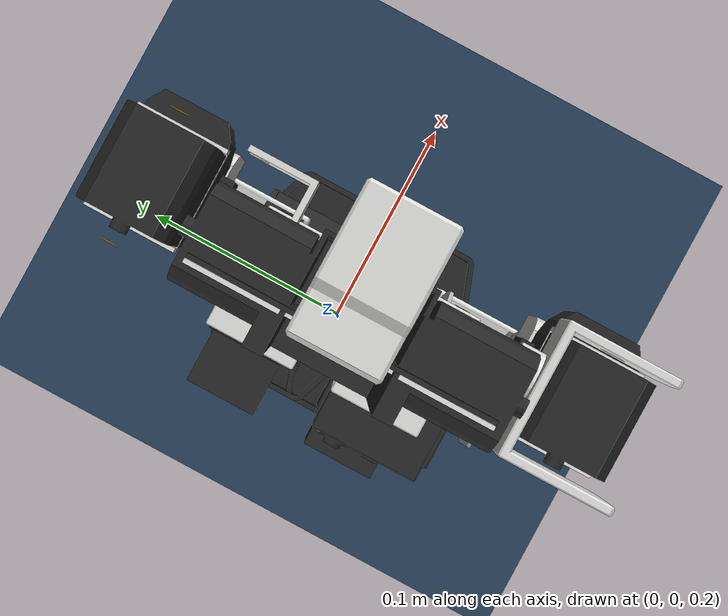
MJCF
<mujoco model="roid1_middlefoot_mjcf scene">
  <include file="roid1_middlefoot_mjcf.xml"/>

  <statistic center="0 0 0.500000" extent="0.800000"/>

  <visual>
    <headlight diffuse="0.6 0.6 0.6" ambient="0.3 0.3 0.3" specular="0 0 0"/>
    <rgba haze="0.15 0.25 0.35 1"/>
    <global azimuth="-130" elevation="-20"/>
  </visual>

  <asset>
    <texture type="skybox" builtin="gradient" rgb1="0.3 0.5 0.7" rgb2="0 0 0" width="512" height="3072"/>
    <texture type="2d" name="groundplane" builtin="checker" mark="edge" rgb1="0.2 0.3 0.4" rgb2="0.1 0.2 0.3"
      markrgb="0.8 0.8 0.8" width="300" height="300"/>
    <material name="groundplane" texture="groundplane" texuniform="true" texrepeat="5 5" reflectance="0.2"/>
  </asset>

  <worldbody>
    <!-- Ground/Environment -->
    <light pos="0 0 1.5" dir="0 0 -1" directional="true"/>
    <geom name="floor" size="0 0 0.05" type="plane" material="groundplane" group="0"/>
  </worldbody>
</mujoco>

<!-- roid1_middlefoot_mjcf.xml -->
<mujoco model="roid1_middlefoot_mjcf">
  <compiler angle="radian" meshdir="assets" autolimits="true" />

  <option cone="elliptic" impratio="100" />

  <default>
    <!-- 共通設定 -->
    <joint damping="0.1" armature="0.01" frictionloss="0.2"/>
    <motor ctrlrange="-23.7 23.7"/>
    <geom friction="0.4" margin="0.001" condim="3"/>
    <!-- コライダー用：group=0 -->
    <default class="collision">
      <geom group="0"/>
    </default>
    <!-- ビジュアル用：group=1（衝突しない） -->
    <default class="visual">
      <geom contype="0" conaffinity="0" group="1"/>
    </default>
  </default>

  <asset>
    <material name="metal" rgba=".9 .95 .95 1" />
    <material name="black" rgba="0 0 0 1" />
    <material name="white" rgba="1 1 1 1" />
    <material name="gray" rgba="0.671705 0.692426 0.774270 1" />

    <mesh name="c_chest" file="c_chest.obj" />
    <mesh name="c_chest_dec1" file="c_chest_dec1.obj" />
    <mesh name="c_chest_dec2" file="c_chest_dec2.obj" />
    <mesh name="c_head" file="c_head.obj" />
    <mesh name="c_waist" file="c_waist.obj" />
    <mesh name="l_ankle" file="l_ankle.obj" />
    <mesh name="l_arm_lower" file="l_arm_lower.obj" />
    <mesh name="l_arm_upper" file="l_arm_upper.obj" />
    <mesh name="l_arm_upper_dec1" file="l_arm_upper_dec1.obj" />
    <mesh name="l_elbow" file="l_elbow.obj" />
    <mesh name="l_foot_middle" file="l_foot_middle.obj" />
    <mesh name="l_hipjoint_lower" file="l_hipjoint_lower.obj" />
    <mesh name="l_hipjoint_upper" file="l_hipjoint_upper.obj" />
    <mesh name="l_hipjoint_upper_dec1" file="l_hipjoint_upper_dec1.obj" />
    <mesh name="l_leg_lower" file="l_leg_lower.obj" />
    <mesh name="l_leg_lower_dec1" file="l_leg_lower_dec1.obj" />
    <mesh name="l_leg_upper" file="l_leg_upper.obj" />
    <mesh name="l_leg_upper_dec1" file="l_leg_upper_dec1.obj" />
    <mesh name="l_shoulder" file="l_shoulder.obj" />
    <mesh name="l_shoulder_dec1" file="l_shoulder_dec1.obj" />
    <mesh name="r_ankle" file="r_ankle.obj" />
    <mesh name="r_arm_lower" file="r_arm_lower.obj" />
    <mesh name="r_arm_upper" file="r_arm_upper.obj" />
    <mesh name="r_arm_upper_dec1" file="r_arm_upper_dec1.obj" />
    <mesh name="r_elbow" file="r_elbow.obj" />
    <mesh name="r_foot_middle" file="r_foot_middle.obj" />
    <mesh name="r_hipjoint_lower" file="r_hipjoint_lower.obj" />
    <mesh name="r_hipjoint_upper" file="r_hipjoint_upper.obj" />
    <mesh name="r_hipjoint_upper_dec1" file="r_hipjoint_upper_dec1.obj" />
    <mesh name="r_leg_lower" file="r_leg_lower.obj" />
    <mesh name="r_leg_lower_dec1" file="r_leg_lower_dec1.obj" />
    <mesh name="r_leg_upper" file="r_leg_upper.obj" />
    <mesh name="r_leg_upper_dec1" file="r_leg_upper_dec1.obj" />
    <mesh name="r_shoulder" file="r_shoulder.obj" />
    <mesh name="r_shoulder_dec1" file="r_shoulder_dec1.obj" />
  </asset>

  <worldbody>
    <body name="base_link" pos="0 0 0.5">
      <freejoint />
      <body name="c_waist" pos="0.0 0.0 0.0">
        <joint name="c_waist_joint" type="hinge" pos="0 0 0" axis="1 0 0" range="-3.141592653589793 3.141592653589793" limited="true" margin="0.01" armature="0.01" frictionloss="0.01" damping="1" />
        <inertial pos="-0.011334 0.000031 -0.001324" mass="0.1428" fullinertia="0.00007893 0.00005228 0.00008515 0 0 0" />
        <!-- ビジュアル（表示用） -->
        <geom class="visual" type="mesh" mesh="c_waist" rgba="0.153 0.153 0.153 1.0" group="1"/>
        <!-- コライダー（衝突判定用） -->
        <geom class="collision" type="box" size="0.0205 0.03205 0.01475" pos="-0.0115 0.0 -0.002" quat="1.0 0.0 0.0 0.0" group="3"/>
        <body name="c_chest" pos="0.0 -0.0 0.0198">
          <joint name="c_chest_joint" type="hinge" pos="0 0 0" axis="0 0 1" range="-3.141592653589793 3.141592653589793" limited="true" margin="0.01" armature="0.01" frictionloss="0.01" damping="1" />
          <inertial pos="-0.016071 -0.000121 0.032638" mass="0.4215" fullinertia="0.0006944 0.00082653 0.00086974 0 0 0" />
          <!-- ビジュアル（表示用） -->
          <geom class="visual" type="mesh" mesh="c_chest" rgba="0.153 0.153 0.153 1.0" group="1"/>
          <!-- コライダー（衝突判定用） -->
          <geom class="collision" type="box" size="0.0585 0.04505 0.0278" pos="-0.0131 -0.0005 0.0341" quat="1.0 0.0 0.0 0.0" group="3"/>
          <body name="c_head" pos="0.01603 0.0 0.0624">
            <joint name="c_head_joint" type="hinge" pos="0 0 0" axis="0 0 1" range="-3.141592653589793 3.141592653589793" limited="true" margin="0.01" armature="0.01" frictionloss="0.01" damping="1" />
            <inertial pos="0.004414 0.000003 0.02119" mass="0.013" fullinertia="0.0000041 0.00000528 0.00000497 0 0 0" />
            <!-- ビジュアル（表示用） -->
            <geom class="visual" type="mesh" mesh="c_head" rgba="0.882 0.882 0.871 1.0" group="1"/>
            <!-- コライダー（衝突判定用） -->
            <geom class="collision" type="box" size="0.0235 0.0145 0.01575" pos="0.0032 0.0 0.0227" quat="1.0 0.0 0.0 0.0" group="3"/>
          </body>
          <body name="l_shoulder" pos="0.01603 0.048855 0.045405">
            <joint name="l_shoulder_joint" type="hinge" pos="0 0 0" axis="0 1 0" range="-3.141592653589793 3.141592653589793" limited="true" margin="0.01" armature="0.01" frictionloss="0.01" damping="1" />
            <inertial pos="-0.000143 0.021036 0.000103" mass="0.014" fullinertia="0.00000319 0.00000465 0.0000058 0 0 0" />
            <!-- ビジュアル（表示用） -->
            <geom class="visual" type="mesh" mesh="l_shoulder" rgba="0.882 0.882 0.871 1.0" group="1"/>
            <!-- コライダー（衝突判定用） -->
            <geom class="collision" type="cylinder" size="0.01 0.0036" pos="0.0 0.004 0.0" quat="0.7071067811865476 -0.7071067811865475 0.0 0.0" group="3"/>
            <body name="l_arm_upper" pos="0.0 0.02555 0.0">
              <joint name="l_arm_upper_joint" type="hinge" pos="0 0 0" axis="1 0 0" range="-0.174532925199433 3.316125578789226" limited="true" margin="0.01" armature="0.01" frictionloss="0.01" damping="1" />
              <inertial pos="-0.002104 0.000357 -0.033527" mass="0.098" fullinertia="0.00007063 0.00007913 0.00003688 0 0 0" />
              <!-- ビジュアル（表示用） -->
              <geom class="visual" type="mesh" mesh="l_arm_upper" rgba="0.153 0.153 0.153 1.0" group="1"/>
              <!-- コライダー（衝突判定用） -->
              <geom class="collision" type="box" size="0.01445 0.01045 0.038" pos="-0.0002 0.0 -0.0305" quat="1.0 0.0 0.0 0.0" group="3"/>
              <body name="l_elbow" pos="-0.00015 0.0 -0.074">
                <joint name="l_elbow_joint" type="hinge" pos="0 0 0" axis="0 0 1" range="-1.570796326794897 1.570796326794897" limited="true" margin="0.01" armature="0.01" frictionloss="0.01" damping="1" />
                <inertial pos="-0.006581 0.000258 -0.014196" mass="0.044" fullinertia="0.0000105 0.00001256 0.00001357 0 0 0" />
                <!-- ビジュアル（表示用） -->
                <geom class="visual" type="mesh" mesh="l_elbow" rgba="0.153 0.153 0.153 1.0" group="1"/>
                <!-- コライダー（衝突判定用） -->
                <geom class="collision" type="box" size="0.0205 0.01505 0.01005" pos="-0.007 0.0005 -0.0145" quat="1.0 0.0 0.0 0.0" group="3"/>
                <body name="l_arm_lower" pos="0.004527 0.0 -0.01457">
                  <joint name="l_arm_lower_joint" type="hinge" pos="0 0 0" axis="0 1 0" range="-2.443460952792061 0.523598775598299" limited="true" margin="0.01" armature="0.01" frictionloss="0.01" damping="1" />
                  <inertial pos="-0.002104 0.000357 -0.043527" mass="0.03" fullinertia="0.00005277 0.00005106 0.00001242 0 0 0" />
                  <!-- ビジュアル（表示用） -->
                  <geom class="visual" type="mesh" mesh="l_arm_lower" rgba="0.882 0.882 0.871 1.0" group="1"/>
                  <!-- コライダー（衝突判定用） -->
                  <geom class="collision" type="capsule" size="0.0161 0.01945" pos="-0.0022 0.0 -0.0616" quat="1.0 0.0 0.0 0.0" group="3"/>
                </body>
              </body>
              <geom class="visual" type="mesh" mesh="l_arm_upper_dec1" rgba="0.882 0.882 0.871 1.0" pos="0.0 0.0 0.0"/>
            </body>
            <geom class="visual" type="mesh" mesh="l_shoulder_dec1" rgba="1.0 0.667 0.0 1.0" pos="0.0 0.0 0.0"/>
          </body>
          <body name="r_shoulder" pos="0.01603 -0.048855 0.045405">
            <joint name="r_shoulder_joint" type="hinge" pos="0 0 0" axis="0 1 0" range="-3.141592653589793 3.141592653589793" limited="true" margin="0.01" armature="0.01" frictionloss="0.01" damping="1" />
            <inertial pos="-0.000143 -0.021036 0.000103" mass="0.014" fullinertia="0.00000319 0.00000465 0.0000058 0 0 0" />
            <!-- ビジュアル（表示用） -->
            <geom class="visual" type="mesh" mesh="r_shoulder" rgba="0.882 0.882 0.871 1.0" group="1"/>
            <!-- コライダー（衝突判定用） -->
            <geom class="collision" type="cylinder" size="0.01 0.0036" pos="0.0 -0.004 0.0" quat="0.7071067811865476 0.7071067811865475 0.0 -0.0" group="3"/>
            <body name="r_arm_upper" pos="0.0 -0.02555 0.0">
              <joint name="r_arm_upper_joint" type="hinge" pos="0 0 0" axis="1 0 0" range="-3.316125578789226 0.174532925199433" limited="true" margin="0.01" armature="0.01" frictionloss="0.01" damping="1" />
              <inertial pos="-0.002104 -0.000357 -0.033527" mass="0.098" fullinertia="0.00007063 0.00007913 0.00003688 0 0 0" />
              <!-- ビジュアル（表示用） -->
              <geom class="visual" type="mesh" mesh="r_arm_upper" rgba="0.153 0.153 0.153 1.0" group="1"/>
              <!-- コライダー（衝突判定用） -->
              <geom class="collision" type="box" size="0.01445 0.01045 0.038" pos="-0.0002 0.0 -0.0305" quat="1.0 0.0 0.0 0.0" group="3"/>
              <body name="r_elbow" pos="-0.00015 -0.0 -0.074">
                <joint name="r_elbow_joint" type="hinge" pos="0 0 0" axis="0 0 1" range="-1.570796326794897 1.570796326794897" limited="true" margin="0.01" armature="0.01" frictionloss="0.01" damping="1" />
                <inertial pos="-0.006581 -0.000258 -0.014196" mass="0.044" fullinertia="0.0000105 0.00001256 0.00001357 0 0 0" />
                <!-- ビジュアル（表示用） -->
                <geom class="visual" type="mesh" mesh="r_elbow" rgba="0.153 0.153 0.153 1.0" group="1"/>
                <!-- コライダー（衝突判定用） -->
                <geom class="collision" type="box" size="0.0205 0.01505 0.01005" pos="-0.007 -0.0005 -0.0145" quat="1.0 0.0 0.0 0.0" group="3"/>
                <body name="r_arm_lower" pos="0.004527 -0.0 -0.01457">
                  <joint name="r_arm_lower_joint" type="hinge" pos="0 0 0" axis="0 1 0" range="-2.443460952792061 0.523598775598299" limited="true" margin="0.01" armature="0.01" frictionloss="0.01" damping="1" />
                  <inertial pos="-0.002104 -0.000357 -0.043527" mass="0.03" fullinertia="0.00005277 0.00005106 0.00001242 0 0 0" />
                  <!-- ビジュアル（表示用） -->
                  <geom class="visual" type="mesh" mesh="r_arm_lower" rgba="0.882 0.882 0.871 1.0" group="1"/>
                  <!-- コライダー（衝突判定用） -->
                  <geom class="collision" type="capsule" size="0.0161 0.02195" pos="-0.0022 0.0 -0.0626" quat="1.0 0.0 0.0 0.0" group="3"/>
                </body>
              </body>
              <geom class="visual" type="mesh" mesh="r_arm_upper_dec1" rgba="0.882 0.882 0.871 1.0" pos="0.0 -0.0 0.0"/>
            </body>
            <geom class="visual" type="mesh" mesh="r_shoulder_dec1" rgba="1.0 0.667 0.0 1.0" pos="0.0 -0.0 0.0"/>
          </body>
          <geom class="visual" type="mesh" mesh="c_chest_dec1" rgba="0.882 0.882 0.871 1.0" pos="0.0 0.0 0.0"/>
          <geom class="visual" type="mesh" mesh="c_chest_dec2" rgba="0.153 0.153 0.153 1.0" pos="0.0 0.0 0.0"/>
        </body>
        <body name="l_hipjoint_upper" pos="0.0 0.02155 -0.02175">
          <joint name="l_hipjoint_upper_joint" type="hinge" pos="0 0 0" axis="0 0 1" range="-0.349065850398866 0.523598775598299" limited="true" margin="0.01" armature="0.01" frictionloss="0.01" damping="1" />
          <inertial pos="0.002326 0.001426 -0.01121" mass="0.0115" fullinertia="0.00000402 0.0000068 0.0000065 0 0 0" />
          <!-- ビジュアル（表示用） -->
          <geom class="visual" type="mesh" mesh="l_hipjoint_upper" rgba="0.882 0.882 0.871 1.0" group="1"/>
          <!-- コライダー（衝突判定用） -->
          <geom class="collision" type="box" size="0.02305 0.01375 0.0015" pos="0.0028 0.0005 -0.001" quat="1.0 0.0 0.0 0.0" group="3"/>
          <body name="l_hipjoint_lower" pos="0.0 -0.00455 -0.0232">
            <joint name="l_hipjoint_lower_joint" type="hinge" pos="0 0 0" axis="1 0 0" range="-0.174532925199433 1.570796326794897" limited="true" margin="0.01" armature="0.01" frictionloss="0.01" damping="1" />
            <inertial pos="0.003874 0.0115 -0.00485" mass="0.058" fullinertia="0.00003081 0.00001833 0.00002693 0 0 0" />
            <!-- ビジュアル（表示用） -->
            <geom class="visual" type="mesh" mesh="l_hipjoint_lower" rgba="0.153 0.153 0.153 1.0" group="1"/>
            <!-- コライダー（衝突判定用） -->
            <geom class="collision" type="box" size="0.01455 0.02025 0.00995" pos="0.0038 0.0115 0.0" quat="1.0 0.0 0.0 0.0" group="3"/>
            <body name="l_leg_upper" pos="0.0039 0.0115 -0.0385">
              <joint name="l_leg_upper_joint" type="hinge" pos="0 0 0" axis="0 1 0" range="-1.570796326794897 1.570796326794897" limited="true" margin="0.01" armature="0.01" frictionloss="0.01" damping="1" />
              <inertial pos="0.004137 -0.00005 -0.032305" mass="0.091" fullinertia="0.00006864 0.00006946 0.0000304 0 0 0" />
              <!-- ビジュアル（表示用） -->
              <geom class="visual" type="mesh" mesh="l_leg_upper" rgba="0.153 0.153 0.153 1.0" group="1"/>
              <!-- コライダー（衝突判定用） -->
              <geom class="collision" type="box" size="0.00965 0.01605 0.03825" pos="0.0003 0.0003 -0.0298" quat="1.0 0.0 0.0 0.0" group="3"/>
              <body name="l_leg_lower" pos="7e-05 0.0 -0.06501">
                <joint name="l_leg_lower_joint" type="hinge" pos="0 0 0" axis="0 1 0" range="-0.087266462599716 2.792526803190927" limited="true" margin="0.01" armature="0.01" frictionloss="0.01" damping="1" />
                <inertial pos="0.001202 0.0001 -0.030834" mass="0.061" fullinertia="0.00003888 0.00003893 0.00001607 0 0 0" />
                <!-- ビジュアル（表示用） -->
                <geom class="visual" type="mesh" mesh="l_leg_lower" rgba="0.153 0.153 0.153 1.0" group="1"/>
                <!-- コライダー（衝突判定用） -->
                <geom class="collision" type="box" size="0.01025 0.0155 0.02" pos="0.0033 0.0003 -0.0542" quat="0.9902680684146087 -0.0009604974588484768 0.13916978883016126 -2.27680269874065e-10" group="3"/>
                <body name="l_ankle" pos="8e-05 -1e-06 -0.0652">
                  <joint name="l_ankle_joint" type="hinge" pos="0 0 0" axis="0 1 0" range="-1.919862177193763 2.268928027592628" limited="true" margin="0.01" armature="0.01" frictionloss="0.01" damping="1" />
                  <inertial pos="0.001028 0.00022 -0.032516" mass="0.058" fullinertia="0.0000342 0.00002997 0.00002268 0 0 0" />
                  <!-- ビジュアル（表示用） -->
                  <geom class="visual" type="mesh" mesh="l_ankle" rgba="0.153 0.153 0.153 1.0" group="1"/>
                  <!-- コライダー（衝突判定用） -->
                  <geom class="collision" type="box" size="0.01455 0.02075 0.00945" pos="-0.0002 0.0 -0.0385" quat="1.0 0.0 0.0 0.0" group="3"/>
                  <body name="l_foot_middle" pos="0.0 -0.011503 -0.03848">
                    <joint name="l_foot_middle_joint" type="hinge" pos="0 0 0" axis="1 0 0" range="-1.570796326794897 0.349065850398866" limited="true" margin="0.01" armature="0.01" frictionloss="0.01" damping="1" />
                    <inertial pos="0.000045 0.019624 -0.020018" mass="0.0301" fullinertia="0.00001987 0.0000308 0.0000363 0 0 0" />
                    <!-- ビジュアル（表示用） -->
                    <geom class="visual" type="mesh" mesh="l_foot_middle" rgba="0.153 0.153 0.153 1.0" group="1"/>
                    <!-- コライダー（衝突判定用） -->
                    <geom class="collision" type="box" size="0.0459 0.0285 0.0035" pos="0.0001 0.0206 -0.0225" quat="1.0 0.0 0.0 0.0" group="3"/>
                  </body>
                </body>
                <geom class="visual" type="mesh" mesh="l_leg_lower_dec1" rgba="0.882 0.882 0.871 1.0" pos="0.0 0.0 0.0"/>
              </body>
              <geom class="visual" type="mesh" mesh="l_leg_upper_dec1" rgba="0.757 0.757 0.757 1.0" pos="0.0 0.0 0.0"/>
            </body>
          </body>
          <geom class="visual" type="mesh" mesh="l_hipjoint_upper_dec1" rgba="1.0 0.667 0.0 1.0" pos="0.0 0.0 0.0"/>
        </body>
        <body name="r_hipjoint_upper" pos="0.0 -0.02155 -0.02175">
          <joint name="r_hipjoint_upper_joint" type="hinge" pos="0 0 0" axis="0 0 1" range="-0.523598775598299 0.349065850398866" limited="true" margin="0.01" armature="0.01" frictionloss="0.01" damping="1" />
          <inertial pos="0.002326 -0.001426 -0.01121" mass="0.0115" fullinertia="0.00000402 0.0000068 0.0000065 0 0 0" />
          <!-- ビジュアル（表示用） -->
          <geom class="visual" type="mesh" mesh="r_hipjoint_upper" rgba="0.882 0.882 0.871 1.0" group="1"/>
          <!-- コライダー（衝突判定用） -->
          <geom class="collision" type="box" size="0.02305 0.01375 0.0015" pos="0.0028 -0.0005 -0.001" quat="1.0 0.0 0.0 0.0" group="3"/>
          <body name="r_hipjoint_lower" pos="0.0 0.00455 -0.0232">
            <joint name="r_hipjoint_lower_joint" type="hinge" pos="0 0 0" axis="1 0 0" range="-1.570796326794897 0.174532925199433" limited="true" margin="0.01" armature="0.01" frictionloss="0.01" damping="1" />
            <inertial pos="0.003874 -0.0115 -0.00485" mass="0.058" fullinertia="0.00003081 0.00001833 0.00002693 0 0 0" />
            <!-- ビジュアル（表示用） -->
            <geom class="visual" type="mesh" mesh="r_hipjoint_lower" rgba="0.153 0.153 0.153 1.0" group="1"/>
            <!-- コライダー（衝突判定用） -->
            <geom class="collision" type="box" size="0.01455 0.02025 0.00995" pos="0.0038 -0.0115 0.0" quat="1.0 0.0 0.0 0.0" group="3"/>
            <body name="r_leg_upper" pos="0.0039 -0.0115 -0.0385">
              <joint name="r_leg_upper_joint" type="hinge" pos="0 0 0" axis="0 1 0" range="-1.570796326794897 1.570796326794897" limited="true" margin="0.01" armature="0.01" frictionloss="0.01" damping="1" />
              <inertial pos="0.004137 0.00005 -0.032305" mass="0.091" fullinertia="0.00006864 0.00006946 0.0000304 0 0 0" />
              <!-- ビジュアル（表示用） -->
              <geom class="visual" type="mesh" mesh="r_leg_upper" rgba="0.153 0.153 0.153 1.0" group="1"/>
              <!-- コライダー（衝突判定用） -->
              <geom class="collision" type="box" size="0.00965 0.01605 0.03825" pos="0.0003 -0.0003 -0.0298" quat="1.0 0.0 0.0 0.0" group="3"/>
              <body name="r_leg_lower" pos="7e-05 -0.0 -0.06501">
                <joint name="r_leg_lower_joint" type="hinge" pos="0 0 0" axis="0 1 0" range="-0.087266462599716 2.792526803190927" limited="true" margin="0.01" armature="0.01" frictionloss="0.01" damping="1" />
                <inertial pos="0.001202 -0.0001 -0.030834" mass="0.061" fullinertia="0.00003888 0.00003893 0.00001607 0 0 0" />
                <!-- ビジュアル（表示用） -->
                <geom class="visual" type="mesh" mesh="r_leg_lower" rgba="0.153 0.153 0.153 1.0" group="1"/>
                <!-- コライダー（衝突判定用） -->
                <geom class="collision" type="box" size="0.01025 0.0155 0.02" pos="0.0033 -0.0003 -0.0542" quat="0.9902680684146087 0.0009604974588484768 0.13916978883016126 2.27680269874065e-10" group="3"/>
                <body name="r_ankle" pos="8e-05 1e-06 -0.0652">
                  <joint name="r_ankle_joint" type="hinge" pos="0 0 0" axis="0 1 0" range="-1.919862177193763 2.268928027592628" limited="true" margin="0.01" armature="0.01" frictionloss="0.01" damping="1" />
                  <inertial pos="0.001028 -0.00022 -0.032516" mass="0.058" fullinertia="0.0000342 0.00002997 0.00002268 0 0 0" />
                  <!-- ビジュアル（表示用） -->
                  <geom class="visual" type="mesh" mesh="r_ankle" rgba="0.153 0.153 0.153 1.0" group="1"/>
                  <!-- コライダー（衝突判定用） -->
                  <geom class="collision" type="box" size="0.01455 0.02075 0.00945" pos="-0.0002 0.0 -0.0385" quat="1.0 0.0 0.0 0.0" group="3"/>
                  <body name="r_foot_middle" pos="0.0 0.011503 -0.03848">
                    <joint name="r_foot_middle_joint" type="hinge" pos="0 0 0" axis="1 0 0" range="-0.349065850398866 1.570796326794897" limited="true" margin="0.01" armature="0.01" frictionloss="0.01" damping="1" />
                    <inertial pos="0.000045 -0.019624 -0.020018" mass="0.0301" fullinertia="0.00001987 0.0000308 0.0000363 0 0 0" />
                    <!-- ビジュアル（表示用） -->
                    <geom class="visual" type="mesh" mesh="r_foot_middle" rgba="0.153 0.153 0.153 1.0" group="1"/>
                    <!-- コライダー（衝突判定用） -->
                    <geom class="collision" type="box" size="0.0459 0.0285 0.0035" pos="0.0001 -0.0206 -0.0225" quat="1.0 0.0 0.0 0.0" group="3"/>
                  </body>
                </body>
                <geom class="visual" type="mesh" mesh="r_leg_lower_dec1" rgba="0.882 0.882 0.871 1.0" pos="0.0 -0.0 0.0"/>
              </body>
              <geom class="visual" type="mesh" mesh="r_leg_upper_dec1" rgba="0.757 0.757 0.757 1.0" pos="0.0 -0.0 0.0"/>
            </body>
          </body>
          <geom class="visual" type="mesh" mesh="r_hipjoint_upper_dec1" rgba="1.0 0.667 0.0 1.0" pos="0.0 -0.0 0.0"/>
        </body>
      </body>
      <inertial pos="0 0 0" mass="0.001" diaginertia="1e-6 1e-6 1e-6"/>
    </body>
  </worldbody>

  <actuator>
    <position name="c_waist_actuator" joint="c_waist_joint" gear="1" kp="100.0" ctrlrange="-3.141592653589793 3.141592653589793"/>
    <position name="c_chest_actuator" joint="c_chest_joint" gear="1" kp="100.0" ctrlrange="-3.141592653589793 3.141592653589793"/>
    <position name="c_head_actuator" joint="c_head_joint" gear="1" kp="100.0" ctrlrange="-3.141592653589793 3.141592653589793"/>
    <position name="l_shoulder_actuator" joint="l_shoulder_joint" gear="1" kp="100.0" ctrlrange="-3.141592653589793 3.141592653589793"/>
    <position name="l_arm_upper_actuator" joint="l_arm_upper_joint" gear="1" kp="100.0" ctrlrange="-0.17453292519943295 3.3161255787892263"/>
    <position name="l_elbow_actuator" joint="l_elbow_joint" gear="1" kp="100.0" ctrlrange="-1.5707963267948966 1.5707963267948966"/>
    <position name="l_arm_lower_actuator" joint="l_arm_lower_joint" gear="1" kp="100.0" ctrlrange="-2.443460952792061 0.5235987755982988"/>
    <position name="r_shoulder_actuator" joint="r_shoulder_joint" gear="1" kp="100.0" ctrlrange="-3.141592653589793 3.141592653589793"/>
    <position name="r_arm_upper_actuator" joint="r_arm_upper_joint" gear="1" kp="100.0" ctrlrange="-3.3161255787892263 0.17453292519943295"/>
    <position name="r_elbow_actuator" joint="r_elbow_joint" gear="1" kp="100.0" ctrlrange="-1.5707963267948966 1.5707963267948966"/>
    <position name="r_arm_lower_actuator" joint="r_arm_lower_joint" gear="1" kp="100.0" ctrlrange="-2.443460952792061 0.5235987755982988"/>
    <position name="l_hipjoint_upper_actuator" joint="l_hipjoint_upper_joint" gear="1" kp="100.0" ctrlrange="-0.3490658503988659 0.5235987755982988"/>
    <position name="l_hipjoint_lower_actuator" joint="l_hipjoint_lower_joint" gear="1" kp="100.0" ctrlrange="-0.17453292519943295 1.5707963267948966"/>
    <position name="l_leg_upper_actuator" joint="l_leg_upper_joint" gear="1" kp="100.0" ctrlrange="-1.5707963267948966 1.5707963267948966"/>
    <position name="l_leg_lower_actuator" joint="l_leg_lower_joint" gear="1" kp="100.0" ctrlrange="-0.08726646259971647 2.792526803190927"/>
    <position name="l_ankle_actuator" joint="l_ankle_joint" gear="1" kp="100.0" ctrlrange="-1.9198621771937625 2.2689280275926285"/>
    <position name="l_foot_middle_actuator" joint="l_foot_middle_joint" gear="1" kp="100.0" ctrlrange="-1.5707963267948966 0.3490658503988659"/>
    <position name="r_hipjoint_upper_actuator" joint="r_hipjoint_upper_joint" gear="1" kp="100.0" ctrlrange="-0.5235987755982988 0.3490658503988659"/>
    <position name="r_hipjoint_lower_actuator" joint="r_hipjoint_lower_joint" gear="1" kp="100.0" ctrlrange="-1.5707963267948966 0.17453292519943295"/>
    <position name="r_leg_upper_actuator" joint="r_leg_upper_joint" gear="1" kp="100.0" ctrlrange="-1.5707963267948966 1.5707963267948966"/>
    <position name="r_leg_lower_actuator" joint="r_leg_lower_joint" gear="1" kp="100.0" ctrlrange="-0.08726646259971647 2.792526803190927"/>
    <position name="r_ankle_actuator" joint="r_ankle_joint" gear="1" kp="100.0" ctrlrange="-1.9198621771937625 2.2689280275926285"/>
    <position name="r_foot_middle_actuator" joint="r_foot_middle_joint" gear="1" kp="100.0" ctrlrange="-0.3490658503988659 1.5707963267948966"/>
  </actuator>

  <sensor>
    <!-- Add sensors here if needed -->
  </sensor>
</mujoco>
